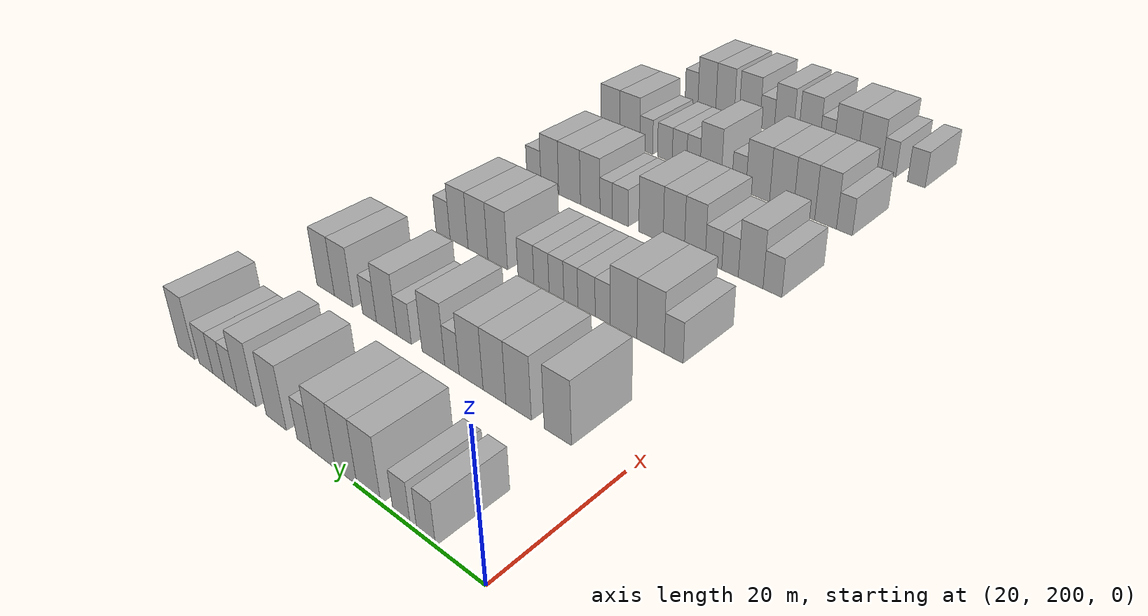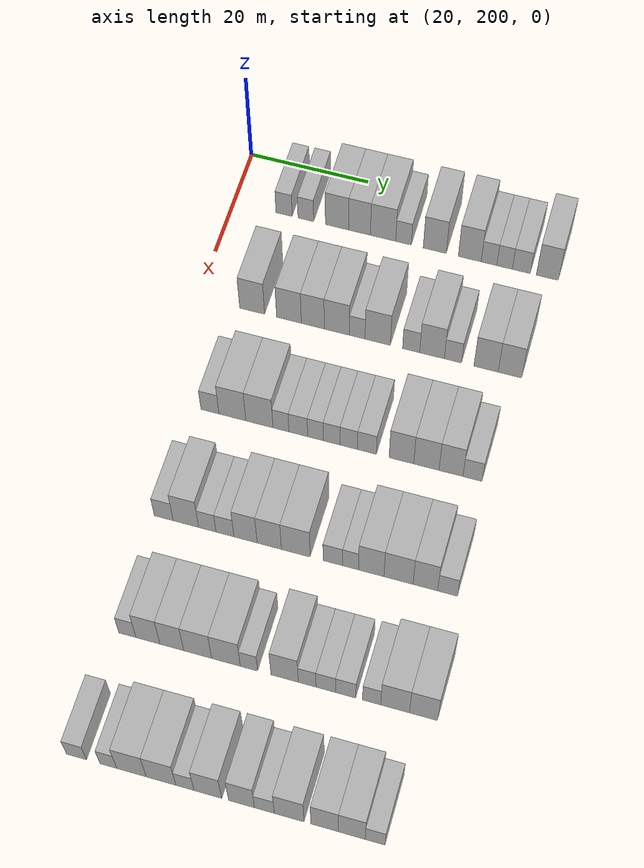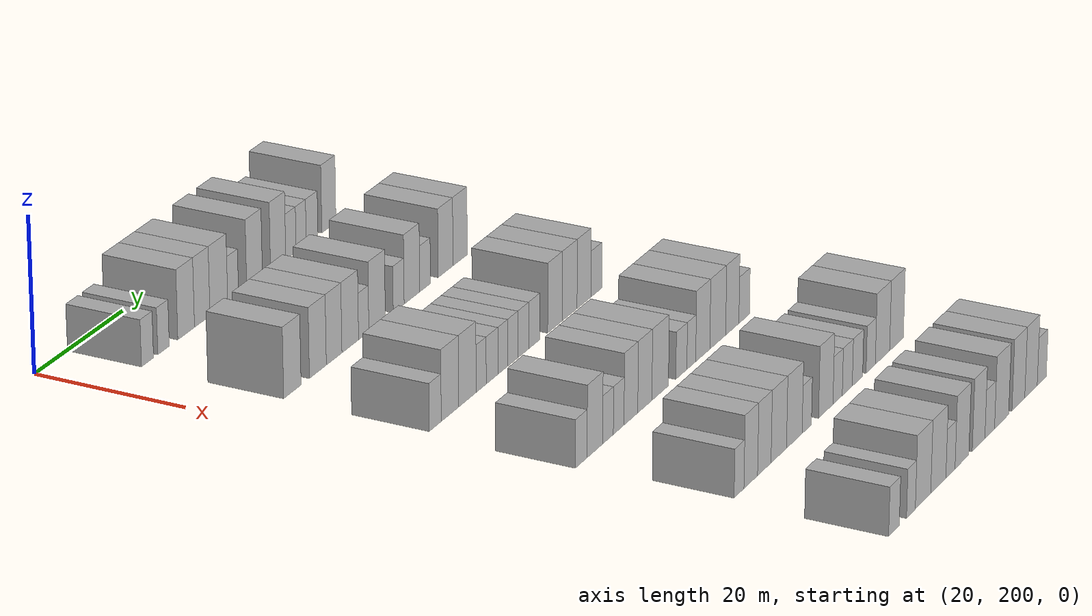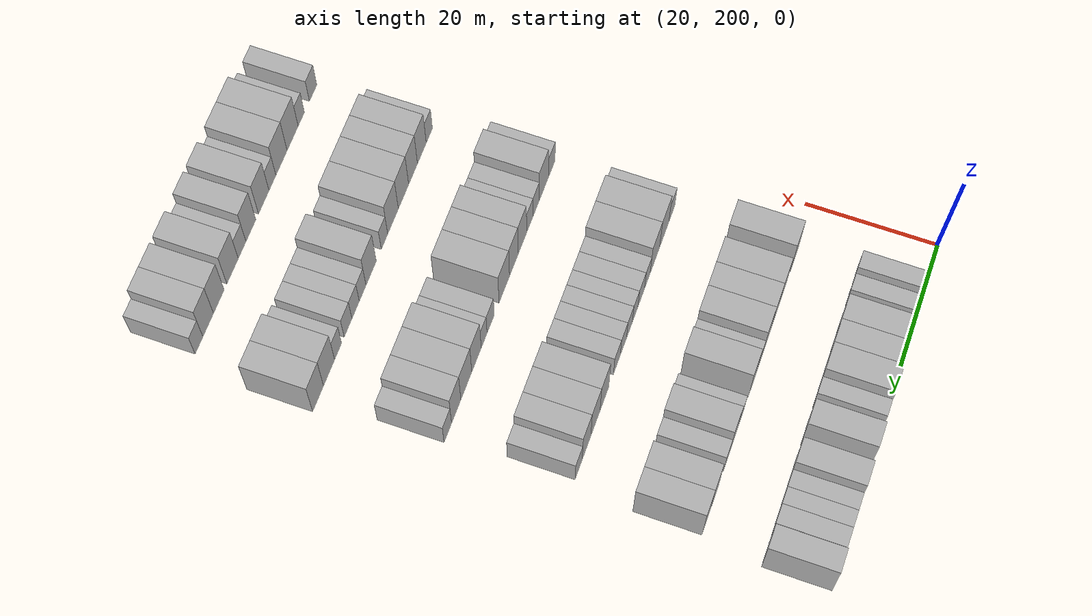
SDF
<sdf version="1.6">
 <world name="default">
  <model name="building_135">
   <static>1</static>
   <pose>25.0000 208.6250 0 0.000000 0.000000 0.000000</pose>
   <link name="link">
    <pose>0 0 3.00 0 0 0</pose>
    <collision name="collision"><geometry><box><size>10.0000 2.7635 6.0000</size></box></geometry></collision>
    <visual name="visual">
     <cast_shadows>0</cast_shadows>
     <geometry><box><size>10.0000 2.7635 6.0000</size></box></geometry>
     <material>
      <script>
       <uri>model://HANNAS_wall/materials/scripts</uri>
       <uri>model://HANNAS_wall/materials/textures</uri>
       <name>vrc/HANNAS_wall</name>
      </script>
     </material>
    </visual>
   </link>
  </model>
  <model name="building_136">
   <static>1</static>
   <pose>25.0000 212.3387 0 0.000000 0.000000 0.000000</pose>
   <link name="link">
    <pose>0 0 3.00 0 0 0</pose>
    <collision name="collision"><geometry><box><size>10.0000 2.6638 6.0000</size></box></geometry></collision>
    <visual name="visual">
     <cast_shadows>0</cast_shadows>
     <geometry><box><size>10.0000 2.6638 6.0000</size></box></geometry>
     <material>
      <script>
       <uri>model://HANNAS_wall/materials/scripts</uri>
       <uri>model://HANNAS_wall/materials/textures</uri>
       <name>vrc/HANNAS_wall</name>
      </script>
     </material>
    </visual>
   </link>
  </model>
  <model name="building_137">
   <static>1</static>
   <pose>25.0000 217.6332 0 0.000000 0.000000 0.000000</pose>
   <link name="link">
    <pose>0 0 4.50 0 0 0</pose>
    <collision name="collision"><geometry><box><size>10.0000 3.9252 9.0000</size></box></geometry></collision>
    <visual name="visual">
     <cast_shadows>0</cast_shadows>
     <geometry><box><size>10.0000 3.9252 9.0000</size></box></geometry>
     <material>
      <script>
       <uri>model://HANNAS_wall/materials/scripts</uri>
       <uri>model://HANNAS_wall/materials/textures</uri>
       <name>vrc/HANNAS_wall</name>
      </script>
     </material>
    </visual>
   </link>
  </model>
  <model name="building_138">
   <static>1</static>
   <pose>25.0000 221.4359 0 0.000000 0.000000 0.000000</pose>
   <link name="link">
    <pose>0 0 4.50 0 0 0</pose>
    <collision name="collision"><geometry><box><size>10.0000 3.6803 9.0000</size></box></geometry></collision>
    <visual name="visual">
     <cast_shadows>0</cast_shadows>
     <geometry><box><size>10.0000 3.6803 9.0000</size></box></geometry>
     <material>
      <script>
       <uri>model://HANNAS_wall/materials/scripts</uri>
       <uri>model://HANNAS_wall/materials/textures</uri>
       <name>vrc/HANNAS_wall</name>
      </script>
     </material>
    </visual>
   </link>
  </model>
  <model name="building_139">
   <static>1</static>
   <pose>25.0000 225.4067 0 0.000000 0.000000 0.000000</pose>
   <link name="link">
    <pose>0 0 4.50 0 0 0</pose>
    <collision name="collision"><geometry><box><size>10.0000 4.2613 9.0000</size></box></geometry></collision>
    <visual name="visual">
     <cast_shadows>0</cast_shadows>
     <geometry><box><size>10.0000 4.2613 9.0000</size></box></geometry>
     <material>
      <script>
       <uri>model://HANNAS_wall/materials/scripts</uri>
       <uri>model://HANNAS_wall/materials/textures</uri>
       <name>vrc/HANNAS_wall</name>
      </script>
     </material>
    </visual>
   </link>
  </model>
  <model name="building_140">
   <static>1</static>
   <pose>25.0000 228.8436 0 0.000000 0.000000 0.000000</pose>
   <link name="link">
    <pose>0 0 3.00 0 0 0</pose>
    <collision name="collision"><geometry><box><size>10.0000 2.6125 6.0000</size></box></geometry></collision>
    <visual name="visual">
     <cast_shadows>0</cast_shadows>
     <geometry><box><size>10.0000 2.6125 6.0000</size></box></geometry>
     <material>
      <script>
       <uri>model://HANNAS_wall/materials/scripts</uri>
       <uri>model://HANNAS_wall/materials/textures</uri>
       <name>vrc/HANNAS_wall</name>
      </script>
     </material>
    </visual>
   </link>
  </model>
  <model name="building_141">
   <static>1</static>
   <pose>25.0000 234.0780 0 0.000000 0.000000 0.000000</pose>
   <link name="link">
    <pose>0 0 4.50 0 0 0</pose>
    <collision name="collision"><geometry><box><size>10.0000 3.8562 9.0000</size></box></geometry></collision>
    <visual name="visual">
     <cast_shadows>0</cast_shadows>
     <geometry><box><size>10.0000 3.8562 9.0000</size></box></geometry>
     <material>
      <script>
       <uri>model://HANNAS_wall/materials/scripts</uri>
       <uri>model://HANNAS_wall/materials/textures</uri>
       <name>vrc/HANNAS_wall</name>
      </script>
     </material>
    </visual>
   </link>
  </model>
  <model name="building_142">
   <static>1</static>
   <pose>25.0000 239.9063 0 0.000000 0.000000 0.000000</pose>
   <link name="link">
    <pose>0 0 4.50 0 0 0</pose>
    <collision name="collision"><geometry><box><size>10.0000 3.8004 9.0000</size></box></geometry></collision>
    <visual name="visual">
     <cast_shadows>0</cast_shadows>
     <geometry><box><size>10.0000 3.8004 9.0000</size></box></geometry>
     <material>
      <script>
       <uri>model://HANNAS_wall/materials/scripts</uri>
       <uri>model://HANNAS_wall/materials/textures</uri>
       <name>vrc/HANNAS_wall</name>
      </script>
     </material>
    </visual>
   </link>
  </model>
  <model name="building_143">
   <static>1</static>
   <pose>25.0000 243.1037 0 0.000000 0.000000 0.000000</pose>
   <link name="link">
    <pose>0 0 3.00 0 0 0</pose>
    <collision name="collision"><geometry><box><size>10.0000 2.5945 6.0000</size></box></geometry></collision>
    <visual name="visual">
     <cast_shadows>0</cast_shadows>
     <geometry><box><size>10.0000 2.5945 6.0000</size></box></geometry>
     <material>
      <script>
       <uri>model://HANNAS_wall/materials/scripts</uri>
       <uri>model://HANNAS_wall/materials/textures</uri>
       <name>vrc/HANNAS_wall</name>
      </script>
     </material>
    </visual>
   </link>
  </model>
  <model name="building_144">
   <static>1</static>
   <pose>25.0000 245.6774 0 0.000000 0.000000 0.000000</pose>
   <link name="link">
    <pose>0 0 3.00 0 0 0</pose>
    <collision name="collision"><geometry><box><size>10.0000 2.5530 6.0000</size></box></geometry></collision>
    <visual name="visual">
     <cast_shadows>0</cast_shadows>
     <geometry><box><size>10.0000 2.5530 6.0000</size></box></geometry>
     <material>
      <script>
       <uri>model://HANNAS_wall/materials/scripts</uri>
       <uri>model://HANNAS_wall/materials/textures</uri>
       <name>vrc/HANNAS_wall</name>
      </script>
     </material>
    </visual>
   </link>
  </model>
  <model name="building_145">
   <static>1</static>
   <pose>25.0000 248.4351 0 0.000000 0.000000 0.000000</pose>
   <link name="link">
    <pose>0 0 3.00 0 0 0</pose>
    <collision name="collision"><geometry><box><size>10.0000 2.9623 6.0000</size></box></geometry></collision>
    <visual name="visual">
     <cast_shadows>0</cast_shadows>
     <geometry><box><size>10.0000 2.9623 6.0000</size></box></geometry>
     <material>
      <script>
       <uri>model://HANNAS_wall/materials/scripts</uri>
       <uri>model://HANNAS_wall/materials/textures</uri>
       <name>vrc/HANNAS_wall</name>
      </script>
     </material>
    </visual>
   </link>
  </model>
  <model name="building_146">
   <static>1</static>
   <pose>25.0000 252.7270 0 0.000000 0.000000 0.000000</pose>
   <link name="link">
    <pose>0 0 4.50 0 0 0</pose>
    <collision name="collision"><geometry><box><size>10.0000 3.6214 9.0000</size></box></geometry></collision>
    <visual name="visual">
     <cast_shadows>0</cast_shadows>
     <geometry><box><size>10.0000 3.6214 9.0000</size></box></geometry>
     <material>
      <script>
       <uri>model://HANNAS_wall/materials/scripts</uri>
       <uri>model://HANNAS_wall/materials/textures</uri>
       <name>vrc/HANNAS_wall</name>
      </script>
     </material>
    </visual>
   </link>
  </model>
  <model name="building_309">
   <static>1</static>
   <pose>44.0000 209.0740 0 0.000000 0.000000 0.000000</pose>
   <link name="link">
    <pose>0 0 4.50 0 0 0</pose>
    <collision name="collision"><geometry><box><size>10.0000 4.1253 9.0000</size></box></geometry></collision>
    <visual name="visual">
     <cast_shadows>0</cast_shadows>
     <geometry><box><size>10.0000 4.1253 9.0000</size></box></geometry>
     <material>
      <script>
       <uri>model://HANNAS_wall/materials/scripts</uri>
       <uri>model://HANNAS_wall/materials/textures</uri>
       <name>vrc/HANNAS_wall</name>
      </script>
     </material>
    </visual>
   </link>
  </model>
  <model name="building_310">
   <static>1</static>
   <pose>44.0000 215.1765 0 0.000000 0.000000 0.000000</pose>
   <link name="link">
    <pose>0 0 4.50 0 0 0</pose>
    <collision name="collision"><geometry><box><size>10.0000 4.0797 9.0000</size></box></geometry></collision>
    <visual name="visual">
     <cast_shadows>0</cast_shadows>
     <geometry><box><size>10.0000 4.0797 9.0000</size></box></geometry>
     <material>
      <script>
       <uri>model://HANNAS_wall/materials/scripts</uri>
       <uri>model://HANNAS_wall/materials/textures</uri>
       <name>vrc/HANNAS_wall</name>
      </script>
     </material>
    </visual>
   </link>
  </model>
  <model name="building_311">
   <static>1</static>
   <pose>44.0000 219.1152 0 0.000000 0.000000 0.000000</pose>
   <link name="link">
    <pose>0 0 4.50 0 0 0</pose>
    <collision name="collision"><geometry><box><size>10.0000 3.7977 9.0000</size></box></geometry></collision>
    <visual name="visual">
     <cast_shadows>0</cast_shadows>
     <geometry><box><size>10.0000 3.7977 9.0000</size></box></geometry>
     <material>
      <script>
       <uri>model://HANNAS_wall/materials/scripts</uri>
       <uri>model://HANNAS_wall/materials/textures</uri>
       <name>vrc/HANNAS_wall</name>
      </script>
     </material>
    </visual>
   </link>
  </model>
  <model name="building_312">
   <static>1</static>
   <pose>44.0000 223.0641 0 0.000000 0.000000 0.000000</pose>
   <link name="link">
    <pose>0 0 4.50 0 0 0</pose>
    <collision name="collision"><geometry><box><size>10.0000 4.1003 9.0000</size></box></geometry></collision>
    <visual name="visual">
     <cast_shadows>0</cast_shadows>
     <geometry><box><size>10.0000 4.1003 9.0000</size></box></geometry>
     <material>
      <script>
       <uri>model://HANNAS_wall/materials/scripts</uri>
       <uri>model://HANNAS_wall/materials/textures</uri>
       <name>vrc/HANNAS_wall</name>
      </script>
     </material>
    </visual>
   </link>
  </model>
  <model name="building_313">
   <static>1</static>
   <pose>44.0000 226.3930 0 0.000000 0.000000 0.000000</pose>
   <link name="link">
    <pose>0 0 3.00 0 0 0</pose>
    <collision name="collision"><geometry><box><size>10.0000 2.5575 6.0000</size></box></geometry></collision>
    <visual name="visual">
     <cast_shadows>0</cast_shadows>
     <geometry><box><size>10.0000 2.5575 6.0000</size></box></geometry>
     <material>
      <script>
       <uri>model://HANNAS_wall/materials/scripts</uri>
       <uri>model://HANNAS_wall/materials/textures</uri>
       <name>vrc/HANNAS_wall</name>
      </script>
     </material>
    </visual>
   </link>
  </model>
  <model name="building_314">
   <static>1</static>
   <pose>44.0000 229.7344 0 0.000000 0.000000 0.000000</pose>
   <link name="link">
    <pose>0 0 4.50 0 0 0</pose>
    <collision name="collision"><geometry><box><size>10.0000 4.1252 9.0000</size></box></geometry></collision>
    <visual name="visual">
     <cast_shadows>0</cast_shadows>
     <geometry><box><size>10.0000 4.1252 9.0000</size></box></geometry>
     <material>
      <script>
       <uri>model://HANNAS_wall/materials/scripts</uri>
       <uri>model://HANNAS_wall/materials/textures</uri>
       <name>vrc/HANNAS_wall</name>
      </script>
     </material>
    </visual>
   </link>
  </model>
  <model name="building_315">
   <static>1</static>
   <pose>44.0000 235.1810 0 0.000000 0.000000 0.000000</pose>
   <link name="link">
    <pose>0 0 3.00 0 0 0</pose>
    <collision name="collision"><geometry><box><size>10.0000 2.7679 6.0000</size></box></geometry></collision>
    <visual name="visual">
     <cast_shadows>0</cast_shadows>
     <geometry><box><size>10.0000 2.7679 6.0000</size></box></geometry>
     <material>
      <script>
       <uri>model://HANNAS_wall/materials/scripts</uri>
       <uri>model://HANNAS_wall/materials/textures</uri>
       <name>vrc/HANNAS_wall</name>
      </script>
     </material>
    </visual>
   </link>
  </model>
  <model name="building_316">
   <static>1</static>
   <pose>44.0000 238.5628 0 0.000000 0.000000 0.000000</pose>
   <link name="link">
    <pose>0 0 4.50 0 0 0</pose>
    <collision name="collision"><geometry><box><size>10.0000 3.9957 9.0000</size></box></geometry></collision>
    <visual name="visual">
     <cast_shadows>0</cast_shadows>
     <geometry><box><size>10.0000 3.9957 9.0000</size></box></geometry>
     <material>
      <script>
       <uri>model://HANNAS_wall/materials/scripts</uri>
       <uri>model://HANNAS_wall/materials/textures</uri>
       <name>vrc/HANNAS_wall</name>
      </script>
     </material>
    </visual>
   </link>
  </model>
  <model name="building_317">
   <static>1</static>
   <pose>44.0000 241.9426 0 0.000000 0.000000 0.000000</pose>
   <link name="link">
    <pose>0 0 3.00 0 0 0</pose>
    <collision name="collision"><geometry><box><size>10.0000 2.7638 6.0000</size></box></geometry></collision>
    <visual name="visual">
     <cast_shadows>0</cast_shadows>
     <geometry><box><size>10.0000 2.7638 6.0000</size></box></geometry>
     <material>
      <script>
       <uri>model://HANNAS_wall/materials/scripts</uri>
       <uri>model://HANNAS_wall/materials/textures</uri>
       <name>vrc/HANNAS_wall</name>
      </script>
     </material>
    </visual>
   </link>
  </model>
  <model name="building_318">
   <static>1</static>
   <pose>44.0000 247.2689 0 0.000000 0.000000 0.000000</pose>
   <link name="link">
    <pose>0 0 4.50 0 0 0</pose>
    <collision name="collision"><geometry><box><size>10.0000 3.8887 9.0000</size></box></geometry></collision>
    <visual name="visual">
     <cast_shadows>0</cast_shadows>
     <geometry><box><size>10.0000 3.8887 9.0000</size></box></geometry>
     <material>
      <script>
       <uri>model://HANNAS_wall/materials/scripts</uri>
       <uri>model://HANNAS_wall/materials/textures</uri>
       <name>vrc/HANNAS_wall</name>
      </script>
     </material>
    </visual>
   </link>
  </model>
  <model name="building_319">
   <static>1</static>
   <pose>44.0000 251.0948 0 0.000000 0.000000 0.000000</pose>
   <link name="link">
    <pose>0 0 4.50 0 0 0</pose>
    <collision name="collision"><geometry><box><size>10.0000 3.7631 9.0000</size></box></geometry></collision>
    <visual name="visual">
     <cast_shadows>0</cast_shadows>
     <geometry><box><size>10.0000 3.7631 9.0000</size></box></geometry>
     <material>
      <script>
       <uri>model://HANNAS_wall/materials/scripts</uri>
       <uri>model://HANNAS_wall/materials/textures</uri>
       <name>vrc/HANNAS_wall</name>
      </script>
     </material>
    </visual>
   </link>
  </model>
  <model name="building_470">
   <static>1</static>
   <pose>63.0000 208.1879 0 0.000000 0.000000 0.000000</pose>
   <link name="link">
    <pose>0 0 3.00 0 0 0</pose>
    <collision name="collision"><geometry><box><size>10.0000 2.9054 6.0000</size></box></geometry></collision>
    <visual name="visual">
     <cast_shadows>0</cast_shadows>
     <geometry><box><size>10.0000 2.9054 6.0000</size></box></geometry>
     <material>
      <script>
       <uri>model://HANNAS_wall/materials/scripts</uri>
       <uri>model://HANNAS_wall/materials/textures</uri>
       <name>vrc/HANNAS_wall</name>
      </script>
     </material>
    </visual>
   </link>
  </model>
  <model name="building_471">
   <static>1</static>
   <pose>63.0000 211.8039 0 0.000000 0.000000 0.000000</pose>
   <link name="link">
    <pose>0 0 4.50 0 0 0</pose>
    <collision name="collision"><geometry><box><size>10.0000 4.3266 9.0000</size></box></geometry></collision>
    <visual name="visual">
     <cast_shadows>0</cast_shadows>
     <geometry><box><size>10.0000 4.3266 9.0000</size></box></geometry>
     <material>
      <script>
       <uri>model://HANNAS_wall/materials/scripts</uri>
       <uri>model://HANNAS_wall/materials/textures</uri>
       <name>vrc/HANNAS_wall</name>
      </script>
     </material>
    </visual>
   </link>
  </model>
  <model name="building_472">
   <static>1</static>
   <pose>63.0000 216.1492 0 0.000000 0.000000 0.000000</pose>
   <link name="link">
    <pose>0 0 4.50 0 0 0</pose>
    <collision name="collision"><geometry><box><size>10.0000 4.3640 9.0000</size></box></geometry></collision>
    <visual name="visual">
     <cast_shadows>0</cast_shadows>
     <geometry><box><size>10.0000 4.3640 9.0000</size></box></geometry>
     <material>
      <script>
       <uri>model://HANNAS_wall/materials/scripts</uri>
       <uri>model://HANNAS_wall/materials/textures</uri>
       <name>vrc/HANNAS_wall</name>
      </script>
     </material>
    </visual>
   </link>
  </model>
  <model name="building_473">
   <static>1</static>
   <pose>63.0000 219.6053 0 0.000000 0.000000 0.000000</pose>
   <link name="link">
    <pose>0 0 3.00 0 0 0</pose>
    <collision name="collision"><geometry><box><size>10.0000 2.5482 6.0000</size></box></geometry></collision>
    <visual name="visual">
     <cast_shadows>0</cast_shadows>
     <geometry><box><size>10.0000 2.5482 6.0000</size></box></geometry>
     <material>
      <script>
       <uri>model://HANNAS_wall/materials/scripts</uri>
       <uri>model://HANNAS_wall/materials/textures</uri>
       <name>vrc/HANNAS_wall</name>
      </script>
     </material>
    </visual>
   </link>
  </model>
  <model name="building_474">
   <static>1</static>
   <pose>63.0000 222.3737 0 0.000000 0.000000 0.000000</pose>
   <link name="link">
    <pose>0 0 3.00 0 0 0</pose>
    <collision name="collision"><geometry><box><size>10.0000 2.9887 6.0000</size></box></geometry></collision>
    <visual name="visual">
     <cast_shadows>0</cast_shadows>
     <geometry><box><size>10.0000 2.9887 6.0000</size></box></geometry>
     <material>
      <script>
       <uri>model://HANNAS_wall/materials/scripts</uri>
       <uri>model://HANNAS_wall/materials/textures</uri>
       <name>vrc/HANNAS_wall</name>
      </script>
     </material>
    </visual>
   </link>
  </model>
  <model name="building_475">
   <static>1</static>
   <pose>63.0000 225.1084 0 0.000000 0.000000 0.000000</pose>
   <link name="link">
    <pose>0 0 3.00 0 0 0</pose>
    <collision name="collision"><geometry><box><size>10.0000 2.4806 6.0000</size></box></geometry></collision>
    <visual name="visual">
     <cast_shadows>0</cast_shadows>
     <geometry><box><size>10.0000 2.4806 6.0000</size></box></geometry>
     <material>
      <script>
       <uri>model://HANNAS_wall/materials/scripts</uri>
       <uri>model://HANNAS_wall/materials/textures</uri>
       <name>vrc/HANNAS_wall</name>
      </script>
     </material>
    </visual>
   </link>
  </model>
  <model name="building_476">
   <static>1</static>
   <pose>63.0000 227.6725 0 0.000000 0.000000 0.000000</pose>
   <link name="link">
    <pose>0 0 3.00 0 0 0</pose>
    <collision name="collision"><geometry><box><size>10.0000 2.6477 6.0000</size></box></geometry></collision>
    <visual name="visual">
     <cast_shadows>0</cast_shadows>
     <geometry><box><size>10.0000 2.6477 6.0000</size></box></geometry>
     <material>
      <script>
       <uri>model://HANNAS_wall/materials/scripts</uri>
       <uri>model://HANNAS_wall/materials/textures</uri>
       <name>vrc/HANNAS_wall</name>
      </script>
     </material>
    </visual>
   </link>
  </model>
  <model name="building_477">
   <static>1</static>
   <pose>63.0000 230.3865 0 0.000000 0.000000 0.000000</pose>
   <link name="link">
    <pose>0 0 3.00 0 0 0</pose>
    <collision name="collision"><geometry><box><size>10.0000 2.7804 6.0000</size></box></geometry></collision>
    <visual name="visual">
     <cast_shadows>0</cast_shadows>
     <geometry><box><size>10.0000 2.7804 6.0000</size></box></geometry>
     <material>
      <script>
       <uri>model://HANNAS_wall/materials/scripts</uri>
       <uri>model://HANNAS_wall/materials/textures</uri>
       <name>vrc/HANNAS_wall</name>
      </script>
     </material>
    </visual>
   </link>
  </model>
  <model name="building_478">
   <static>1</static>
   <pose>63.0000 233.2746 0 0.000000 0.000000 0.000000</pose>
   <link name="link">
    <pose>0 0 3.00 0 0 0</pose>
    <collision name="collision"><geometry><box><size>10.0000 2.9958 6.0000</size></box></geometry></collision>
    <visual name="visual">
     <cast_shadows>0</cast_shadows>
     <geometry><box><size>10.0000 2.9958 6.0000</size></box></geometry>
     <material>
      <script>
       <uri>model://HANNAS_wall/materials/scripts</uri>
       <uri>model://HANNAS_wall/materials/textures</uri>
       <name>vrc/HANNAS_wall</name>
      </script>
     </material>
    </visual>
   </link>
  </model>
  <model name="building_479">
   <static>1</static>
   <pose>63.0000 238.7029 0 0.000000 0.000000 0.000000</pose>
   <link name="link">
    <pose>0 0 4.50 0 0 0</pose>
    <collision name="collision"><geometry><box><size>10.0000 3.8607 9.0000</size></box></geometry></collision>
    <visual name="visual">
     <cast_shadows>0</cast_shadows>
     <geometry><box><size>10.0000 3.8607 9.0000</size></box></geometry>
     <material>
      <script>
       <uri>model://HANNAS_wall/materials/scripts</uri>
       <uri>model://HANNAS_wall/materials/textures</uri>
       <name>vrc/HANNAS_wall</name>
      </script>
     </material>
    </visual>
   </link>
  </model>
  <model name="building_480">
   <static>1</static>
   <pose>63.0000 242.6169 0 0.000000 0.000000 0.000000</pose>
   <link name="link">
    <pose>0 0 4.50 0 0 0</pose>
    <collision name="collision"><geometry><box><size>10.0000 3.9675 9.0000</size></box></geometry></collision>
    <visual name="visual">
     <cast_shadows>0</cast_shadows>
     <geometry><box><size>10.0000 3.9675 9.0000</size></box></geometry>
     <material>
      <script>
       <uri>model://HANNAS_wall/materials/scripts</uri>
       <uri>model://HANNAS_wall/materials/textures</uri>
       <name>vrc/HANNAS_wall</name>
      </script>
     </material>
    </visual>
   </link>
  </model>
  <model name="building_481">
   <static>1</static>
   <pose>63.0000 246.4679 0 0.000000 0.000000 0.000000</pose>
   <link name="link">
    <pose>0 0 4.50 0 0 0</pose>
    <collision name="collision"><geometry><box><size>10.0000 3.7345 9.0000</size></box></geometry></collision>
    <visual name="visual">
     <cast_shadows>0</cast_shadows>
     <geometry><box><size>10.0000 3.7345 9.0000</size></box></geometry>
     <material>
      <script>
       <uri>model://HANNAS_wall/materials/scripts</uri>
       <uri>model://HANNAS_wall/materials/textures</uri>
       <name>vrc/HANNAS_wall</name>
      </script>
     </material>
    </visual>
   </link>
  </model>
  <model name="building_482">
   <static>1</static>
   <pose>63.0000 249.8191 0 0.000000 0.000000 0.000000</pose>
   <link name="link">
    <pose>0 0 3.00 0 0 0</pose>
    <collision name="collision"><geometry><box><size>10.0000 2.9678 6.0000</size></box></geometry></collision>
    <visual name="visual">
     <cast_shadows>0</cast_shadows>
     <geometry><box><size>10.0000 2.9678 6.0000</size></box></geometry>
     <material>
      <script>
       <uri>model://HANNAS_wall/materials/scripts</uri>
       <uri>model://HANNAS_wall/materials/textures</uri>
       <name>vrc/HANNAS_wall</name>
      </script>
     </material>
    </visual>
   </link>
  </model>
  <model name="building_639">
   <static>1</static>
   <pose>82.0000 207.0833 0 0.000000 0.000000 0.000000</pose>
   <link name="link">
    <pose>0 0 3.00 0 0 0</pose>
    <collision name="collision"><geometry><box><size>10.0000 2.9634 6.0000</size></box></geometry></collision>
    <visual name="visual">
     <cast_shadows>0</cast_shadows>
     <geometry><box><size>10.0000 2.9634 6.0000</size></box></geometry>
     <material>
      <script>
       <uri>model://HANNAS_wall/materials/scripts</uri>
       <uri>model://HANNAS_wall/materials/textures</uri>
       <name>vrc/HANNAS_wall</name>
      </script>
     </material>
    </visual>
   </link>
  </model>
  <model name="building_640">
   <static>1</static>
   <pose>82.0000 210.5590 0 0.000000 0.000000 0.000000</pose>
   <link name="link">
    <pose>0 0 4.50 0 0 0</pose>
    <collision name="collision"><geometry><box><size>10.0000 3.9879 9.0000</size></box></geometry></collision>
    <visual name="visual">
     <cast_shadows>0</cast_shadows>
     <geometry><box><size>10.0000 3.9879 9.0000</size></box></geometry>
     <material>
      <script>
       <uri>model://HANNAS_wall/materials/scripts</uri>
       <uri>model://HANNAS_wall/materials/textures</uri>
       <name>vrc/HANNAS_wall</name>
      </script>
     </material>
    </visual>
   </link>
  </model>
  <model name="building_641">
   <static>1</static>
   <pose>82.0000 213.9183 0 0.000000 0.000000 0.000000</pose>
   <link name="link">
    <pose>0 0 3.00 0 0 0</pose>
    <collision name="collision"><geometry><box><size>10.0000 2.7309 6.0000</size></box></geometry></collision>
    <visual name="visual">
     <cast_shadows>0</cast_shadows>
     <geometry><box><size>10.0000 2.7309 6.0000</size></box></geometry>
     <material>
      <script>
       <uri>model://HANNAS_wall/materials/scripts</uri>
       <uri>model://HANNAS_wall/materials/textures</uri>
       <name>vrc/HANNAS_wall</name>
      </script>
     </material>
    </visual>
   </link>
  </model>
  <model name="building_642">
   <static>1</static>
   <pose>82.0000 216.6813 0 0.000000 0.000000 0.000000</pose>
   <link name="link">
    <pose>0 0 3.00 0 0 0</pose>
    <collision name="collision"><geometry><box><size>10.0000 2.7949 6.0000</size></box></geometry></collision>
    <visual name="visual">
     <cast_shadows>0</cast_shadows>
     <geometry><box><size>10.0000 2.7949 6.0000</size></box></geometry>
     <material>
      <script>
       <uri>model://HANNAS_wall/materials/scripts</uri>
       <uri>model://HANNAS_wall/materials/textures</uri>
       <name>vrc/HANNAS_wall</name>
      </script>
     </material>
    </visual>
   </link>
  </model>
  <model name="building_643">
   <static>1</static>
   <pose>82.0000 219.8819 0 0.000000 0.000000 0.000000</pose>
   <link name="link">
    <pose>0 0 4.50 0 0 0</pose>
    <collision name="collision"><geometry><box><size>10.0000 3.6064 9.0000</size></box></geometry></collision>
    <visual name="visual">
     <cast_shadows>0</cast_shadows>
     <geometry><box><size>10.0000 3.6064 9.0000</size></box></geometry>
     <material>
      <script>
       <uri>model://HANNAS_wall/materials/scripts</uri>
       <uri>model://HANNAS_wall/materials/textures</uri>
       <name>vrc/HANNAS_wall</name>
      </script>
     </material>
    </visual>
   </link>
  </model>
  <model name="building_644">
   <static>1</static>
   <pose>82.0000 223.5634 0 0.000000 0.000000 0.000000</pose>
   <link name="link">
    <pose>0 0 4.50 0 0 0</pose>
    <collision name="collision"><geometry><box><size>10.0000 3.7566 9.0000</size></box></geometry></collision>
    <visual name="visual">
     <cast_shadows>0</cast_shadows>
     <geometry><box><size>10.0000 3.7566 9.0000</size></box></geometry>
     <material>
      <script>
       <uri>model://HANNAS_wall/materials/scripts</uri>
       <uri>model://HANNAS_wall/materials/textures</uri>
       <name>vrc/HANNAS_wall</name>
      </script>
     </material>
    </visual>
   </link>
  </model>
  <model name="building_645">
   <static>1</static>
   <pose>82.0000 227.6547 0 0.000000 0.000000 0.000000</pose>
   <link name="link">
    <pose>0 0 4.50 0 0 0</pose>
    <collision name="collision"><geometry><box><size>10.0000 4.4260 9.0000</size></box></geometry></collision>
    <visual name="visual">
     <cast_shadows>0</cast_shadows>
     <geometry><box><size>10.0000 4.4260 9.0000</size></box></geometry>
     <material>
      <script>
       <uri>model://HANNAS_wall/materials/scripts</uri>
       <uri>model://HANNAS_wall/materials/textures</uri>
       <name>vrc/HANNAS_wall</name>
      </script>
     </material>
    </visual>
   </link>
  </model>
  <model name="building_646">
   <static>1</static>
   <pose>82.0000 233.3625 0 0.000000 0.000000 0.000000</pose>
   <link name="link">
    <pose>0 0 3.00 0 0 0</pose>
    <collision name="collision"><geometry><box><size>10.0000 2.9897 6.0000</size></box></geometry></collision>
    <visual name="visual">
     <cast_shadows>0</cast_shadows>
     <geometry><box><size>10.0000 2.9897 6.0000</size></box></geometry>
     <material>
      <script>
       <uri>model://HANNAS_wall/materials/scripts</uri>
       <uri>model://HANNAS_wall/materials/textures</uri>
       <name>vrc/HANNAS_wall</name>
      </script>
     </material>
    </visual>
   </link>
  </model>
  <model name="building_647">
   <static>1</static>
   <pose>82.0000 236.0669 0 0.000000 0.000000 0.000000</pose>
   <link name="link">
    <pose>0 0 3.00 0 0 0</pose>
    <collision name="collision"><geometry><box><size>10.0000 2.4189 6.0000</size></box></geometry></collision>
    <visual name="visual">
     <cast_shadows>0</cast_shadows>
     <geometry><box><size>10.0000 2.4189 6.0000</size></box></geometry>
     <material>
      <script>
       <uri>model://HANNAS_wall/materials/scripts</uri>
       <uri>model://HANNAS_wall/materials/textures</uri>
       <name>vrc/HANNAS_wall</name>
      </script>
     </material>
    </visual>
   </link>
  </model>
  <model name="building_648">
   <static>1</static>
   <pose>82.0000 239.2182 0 0.000000 0.000000 0.000000</pose>
   <link name="link">
    <pose>0 0 4.50 0 0 0</pose>
    <collision name="collision"><geometry><box><size>10.0000 3.8837 9.0000</size></box></geometry></collision>
    <visual name="visual">
     <cast_shadows>0</cast_shadows>
     <geometry><box><size>10.0000 3.8837 9.0000</size></box></geometry>
     <material>
      <script>
       <uri>model://HANNAS_wall/materials/scripts</uri>
       <uri>model://HANNAS_wall/materials/textures</uri>
       <name>vrc/HANNAS_wall</name>
      </script>
     </material>
    </visual>
   </link>
  </model>
  <model name="building_649">
   <static>1</static>
   <pose>82.0000 243.3698 0 0.000000 0.000000 0.000000</pose>
   <link name="link">
    <pose>0 0 4.50 0 0 0</pose>
    <collision name="collision"><geometry><box><size>10.0000 4.4194 9.0000</size></box></geometry></collision>
    <visual name="visual">
     <cast_shadows>0</cast_shadows>
     <geometry><box><size>10.0000 4.4194 9.0000</size></box></geometry>
     <material>
      <script>
       <uri>model://HANNAS_wall/materials/scripts</uri>
       <uri>model://HANNAS_wall/materials/textures</uri>
       <name>vrc/HANNAS_wall</name>
      </script>
     </material>
    </visual>
   </link>
  </model>
  <model name="building_650">
   <static>1</static>
   <pose>82.0000 247.4385 0 0.000000 0.000000 0.000000</pose>
   <link name="link">
    <pose>0 0 4.50 0 0 0</pose>
    <collision name="collision"><geometry><box><size>10.0000 3.7180 9.0000</size></box></geometry></collision>
    <visual name="visual">
     <cast_shadows>0</cast_shadows>
     <geometry><box><size>10.0000 3.7180 9.0000</size></box></geometry>
     <material>
      <script>
       <uri>model://HANNAS_wall/materials/scripts</uri>
       <uri>model://HANNAS_wall/materials/textures</uri>
       <name>vrc/HANNAS_wall</name>
      </script>
     </material>
    </visual>
   </link>
  </model>
  <model name="building_651">
   <static>1</static>
   <pose>82.0000 250.7966 0 0.000000 0.000000 0.000000</pose>
   <link name="link">
    <pose>0 0 3.00 0 0 0</pose>
    <collision name="collision"><geometry><box><size>10.0000 2.9983 6.0000</size></box></geometry></collision>
    <visual name="visual">
     <cast_shadows>0</cast_shadows>
     <geometry><box><size>10.0000 2.9983 6.0000</size></box></geometry>
     <material>
      <script>
       <uri>model://HANNAS_wall/materials/scripts</uri>
       <uri>model://HANNAS_wall/materials/textures</uri>
       <name>vrc/HANNAS_wall</name>
      </script>
     </material>
    </visual>
   </link>
  </model>
  <model name="building_817">
   <static>1</static>
   <pose>101.0000 207.9642 0 0.000000 0.000000 0.000000</pose>
   <link name="link">
    <pose>0 0 3.00 0 0 0</pose>
    <collision name="collision"><geometry><box><size>10.0000 2.5972 6.0000</size></box></geometry></collision>
    <visual name="visual">
     <cast_shadows>0</cast_shadows>
     <geometry><box><size>10.0000 2.5972 6.0000</size></box></geometry>
     <material>
      <script>
       <uri>model://HANNAS_wall/materials/scripts</uri>
       <uri>model://HANNAS_wall/materials/textures</uri>
       <name>vrc/HANNAS_wall</name>
      </script>
     </material>
    </visual>
   </link>
  </model>
  <model name="building_818">
   <static>1</static>
   <pose>101.0000 211.0825 0 0.000000 0.000000 0.000000</pose>
   <link name="link">
    <pose>0 0 4.50 0 0 0</pose>
    <collision name="collision"><geometry><box><size>10.0000 3.6395 9.0000</size></box></geometry></collision>
    <visual name="visual">
     <cast_shadows>0</cast_shadows>
     <geometry><box><size>10.0000 3.6395 9.0000</size></box></geometry>
     <material>
      <script>
       <uri>model://HANNAS_wall/materials/scripts</uri>
       <uri>model://HANNAS_wall/materials/textures</uri>
       <name>vrc/HANNAS_wall</name>
      </script>
     </material>
    </visual>
   </link>
  </model>
  <model name="building_819">
   <static>1</static>
   <pose>101.0000 214.7179 0 0.000000 0.000000 0.000000</pose>
   <link name="link">
    <pose>0 0 4.50 0 0 0</pose>
    <collision name="collision"><geometry><box><size>10.0000 3.6312 9.0000</size></box></geometry></collision>
    <visual name="visual">
     <cast_shadows>0</cast_shadows>
     <geometry><box><size>10.0000 3.6312 9.0000</size></box></geometry>
     <material>
      <script>
       <uri>model://HANNAS_wall/materials/scripts</uri>
       <uri>model://HANNAS_wall/materials/textures</uri>
       <name>vrc/HANNAS_wall</name>
      </script>
     </material>
    </visual>
   </link>
  </model>
  <model name="building_820">
   <static>1</static>
   <pose>101.0000 218.6407 0 0.000000 0.000000 0.000000</pose>
   <link name="link">
    <pose>0 0 4.50 0 0 0</pose>
    <collision name="collision"><geometry><box><size>10.0000 4.2144 9.0000</size></box></geometry></collision>
    <visual name="visual">
     <cast_shadows>0</cast_shadows>
     <geometry><box><size>10.0000 4.2144 9.0000</size></box></geometry>
     <material>
      <script>
       <uri>model://HANNAS_wall/materials/scripts</uri>
       <uri>model://HANNAS_wall/materials/textures</uri>
       <name>vrc/HANNAS_wall</name>
      </script>
     </material>
    </visual>
   </link>
  </model>
  <model name="building_821">
   <static>1</static>
   <pose>101.0000 222.9029 0 0.000000 0.000000 0.000000</pose>
   <link name="link">
    <pose>0 0 4.50 0 0 0</pose>
    <collision name="collision"><geometry><box><size>10.0000 4.3102 9.0000</size></box></geometry></collision>
    <visual name="visual">
     <cast_shadows>0</cast_shadows>
     <geometry><box><size>10.0000 4.3102 9.0000</size></box></geometry>
     <material>
      <script>
       <uri>model://HANNAS_wall/materials/scripts</uri>
       <uri>model://HANNAS_wall/materials/textures</uri>
       <name>vrc/HANNAS_wall</name>
      </script>
     </material>
    </visual>
   </link>
  </model>
  <model name="building_822">
   <static>1</static>
   <pose>101.0000 226.3489 0 0.000000 0.000000 0.000000</pose>
   <link name="link">
    <pose>0 0 3.00 0 0 0</pose>
    <collision name="collision"><geometry><box><size>10.0000 2.5818 6.0000</size></box></geometry></collision>
    <visual name="visual">
     <cast_shadows>0</cast_shadows>
     <geometry><box><size>10.0000 2.5818 6.0000</size></box></geometry>
     <material>
      <script>
       <uri>model://HANNAS_wall/materials/scripts</uri>
       <uri>model://HANNAS_wall/materials/textures</uri>
       <name>vrc/HANNAS_wall</name>
      </script>
     </material>
    </visual>
   </link>
  </model>
  <model name="building_823">
   <static>1</static>
   <pose>101.0000 231.6780 0 0.000000 0.000000 0.000000</pose>
   <link name="link">
    <pose>0 0 4.50 0 0 0</pose>
    <collision name="collision"><geometry><box><size>10.0000 4.0764 9.0000</size></box></geometry></collision>
    <visual name="visual">
     <cast_shadows>0</cast_shadows>
     <geometry><box><size>10.0000 4.0764 9.0000</size></box></geometry>
     <material>
      <script>
       <uri>model://HANNAS_wall/materials/scripts</uri>
       <uri>model://HANNAS_wall/materials/textures</uri>
       <name>vrc/HANNAS_wall</name>
      </script>
     </material>
    </visual>
   </link>
  </model>
  <model name="building_824">
   <static>1</static>
   <pose>101.0000 235.0358 0 0.000000 0.000000 0.000000</pose>
   <link name="link">
    <pose>0 0 3.00 0 0 0</pose>
    <collision name="collision"><geometry><box><size>10.0000 2.6391 6.0000</size></box></geometry></collision>
    <visual name="visual">
     <cast_shadows>0</cast_shadows>
     <geometry><box><size>10.0000 2.6391 6.0000</size></box></geometry>
     <material>
      <script>
       <uri>model://HANNAS_wall/materials/scripts</uri>
       <uri>model://HANNAS_wall/materials/textures</uri>
       <name>vrc/HANNAS_wall</name>
      </script>
     </material>
    </visual>
   </link>
  </model>
  <model name="building_825">
   <static>1</static>
   <pose>101.0000 237.7908 0 0.000000 0.000000 0.000000</pose>
   <link name="link">
    <pose>0 0 3.00 0 0 0</pose>
    <collision name="collision"><geometry><box><size>10.0000 2.8708 6.0000</size></box></geometry></collision>
    <visual name="visual">
     <cast_shadows>0</cast_shadows>
     <geometry><box><size>10.0000 2.8708 6.0000</size></box></geometry>
     <material>
      <script>
       <uri>model://HANNAS_wall/materials/scripts</uri>
       <uri>model://HANNAS_wall/materials/textures</uri>
       <name>vrc/HANNAS_wall</name>
      </script>
     </material>
    </visual>
   </link>
  </model>
  <model name="building_826">
   <static>1</static>
   <pose>101.0000 240.7196 0 0.000000 0.000000 0.000000</pose>
   <link name="link">
    <pose>0 0 3.00 0 0 0</pose>
    <collision name="collision"><geometry><box><size>10.0000 2.9868 6.0000</size></box></geometry></collision>
    <visual name="visual">
     <cast_shadows>0</cast_shadows>
     <geometry><box><size>10.0000 2.9868 6.0000</size></box></geometry>
     <material>
      <script>
       <uri>model://HANNAS_wall/materials/scripts</uri>
       <uri>model://HANNAS_wall/materials/textures</uri>
       <name>vrc/HANNAS_wall</name>
      </script>
     </material>
    </visual>
   </link>
  </model>
  <model name="building_827">
   <static>1</static>
   <pose>101.0000 244.5551 0 0.000000 0.000000 0.000000</pose>
   <link name="link">
    <pose>0 0 3.00 0 0 0</pose>
    <collision name="collision"><geometry><box><size>10.0000 2.6842 6.0000</size></box></geometry></collision>
    <visual name="visual">
     <cast_shadows>0</cast_shadows>
     <geometry><box><size>10.0000 2.6842 6.0000</size></box></geometry>
     <material>
      <script>
       <uri>model://HANNAS_wall/materials/scripts</uri>
       <uri>model://HANNAS_wall/materials/textures</uri>
       <name>vrc/HANNAS_wall</name>
      </script>
     </material>
    </visual>
   </link>
  </model>
  <model name="building_828">
   <static>1</static>
   <pose>101.0000 248.0010 0 0.000000 0.000000 0.000000</pose>
   <link name="link">
    <pose>0 0 4.50 0 0 0</pose>
    <collision name="collision"><geometry><box><size>10.0000 4.2075 9.0000</size></box></geometry></collision>
    <visual name="visual">
     <cast_shadows>0</cast_shadows>
     <geometry><box><size>10.0000 4.2075 9.0000</size></box></geometry>
     <material>
      <script>
       <uri>model://HANNAS_wall/materials/scripts</uri>
       <uri>model://HANNAS_wall/materials/textures</uri>
       <name>vrc/HANNAS_wall</name>
      </script>
     </material>
    </visual>
   </link>
  </model>
  <model name="building_829">
   <static>1</static>
   <pose>101.0000 252.1533 0 0.000000 0.000000 0.000000</pose>
   <link name="link">
    <pose>0 0 4.50 0 0 0</pose>
    <collision name="collision"><geometry><box><size>10.0000 4.0971 9.0000</size></box></geometry></collision>
    <visual name="visual">
     <cast_shadows>0</cast_shadows>
     <geometry><box><size>10.0000 4.0971 9.0000</size></box></geometry>
     <material>
      <script>
       <uri>model://HANNAS_wall/materials/scripts</uri>
       <uri>model://HANNAS_wall/materials/textures</uri>
       <name>vrc/HANNAS_wall</name>
      </script>
     </material>
    </visual>
   </link>
  </model>
  <model name="building_997">
   <static>1</static>
   <pose>120.0000 207.0496 0 0.000000 0.000000 0.000000</pose>
   <link name="link">
    <pose>0 0 3.00 0 0 0</pose>
    <collision name="collision"><geometry><box><size>10.0000 2.9585 6.0000</size></box></geometry></collision>
    <visual name="visual">
     <cast_shadows>0</cast_shadows>
     <geometry><box><size>10.0000 2.9585 6.0000</size></box></geometry>
     <material>
      <script>
       <uri>model://HANNAS_wall/materials/scripts</uri>
       <uri>model://HANNAS_wall/materials/textures</uri>
       <name>vrc/HANNAS_wall</name>
      </script>
     </material>
    </visual>
   </link>
  </model>
  <model name="building_998">
   <static>1</static>
   <pose>120.0000 211.7657 0 0.000000 0.000000 0.000000</pose>
   <link name="link">
    <pose>0 0 3.00 0 0 0</pose>
    <collision name="collision"><geometry><box><size>10.0000 2.4737 6.0000</size></box></geometry></collision>
    <visual name="visual">
     <cast_shadows>0</cast_shadows>
     <geometry><box><size>10.0000 2.4737 6.0000</size></box></geometry>
     <material>
      <script>
       <uri>model://HANNAS_wall/materials/scripts</uri>
       <uri>model://HANNAS_wall/materials/textures</uri>
       <name>vrc/HANNAS_wall</name>
      </script>
     </material>
    </visual>
   </link>
  </model>
  <model name="building_999">
   <static>1</static>
   <pose>120.0000 215.1754 0 0.000000 0.000000 0.000000</pose>
   <link name="link">
    <pose>0 0 4.50 0 0 0</pose>
    <collision name="collision"><geometry><box><size>10.0000 4.3457 9.0000</size></box></geometry></collision>
    <visual name="visual">
     <cast_shadows>0</cast_shadows>
     <geometry><box><size>10.0000 4.3457 9.0000</size></box></geometry>
     <material>
      <script>
       <uri>model://HANNAS_wall/materials/scripts</uri>
       <uri>model://HANNAS_wall/materials/textures</uri>
       <name>vrc/HANNAS_wall</name>
      </script>
     </material>
    </visual>
   </link>
  </model>
  <model name="building_1000">
   <static>1</static>
   <pose>120.0000 219.5162 0 0.000000 0.000000 0.000000</pose>
   <link name="link">
    <pose>0 0 4.50 0 0 0</pose>
    <collision name="collision"><geometry><box><size>10.0000 4.3360 9.0000</size></box></geometry></collision>
    <visual name="visual">
     <cast_shadows>0</cast_shadows>
     <geometry><box><size>10.0000 4.3360 9.0000</size></box></geometry>
     <material>
      <script>
       <uri>model://HANNAS_wall/materials/scripts</uri>
       <uri>model://HANNAS_wall/materials/textures</uri>
       <name>vrc/HANNAS_wall</name>
      </script>
     </material>
    </visual>
   </link>
  </model>
  <model name="building_1001">
   <static>1</static>
   <pose>120.0000 223.0054 0 0.000000 0.000000 0.000000</pose>
   <link name="link">
    <pose>0 0 3.00 0 0 0</pose>
    <collision name="collision"><geometry><box><size>10.0000 2.6423 6.0000</size></box></geometry></collision>
    <visual name="visual">
     <cast_shadows>0</cast_shadows>
     <geometry><box><size>10.0000 2.6423 6.0000</size></box></geometry>
     <material>
      <script>
       <uri>model://HANNAS_wall/materials/scripts</uri>
       <uri>model://HANNAS_wall/materials/textures</uri>
       <name>vrc/HANNAS_wall</name>
      </script>
     </material>
    </visual>
   </link>
  </model>
  <model name="building_1002">
   <static>1</static>
   <pose>120.0000 226.3376 0 0.000000 0.000000 0.000000</pose>
   <link name="link">
    <pose>0 0 4.50 0 0 0</pose>
    <collision name="collision"><geometry><box><size>10.0000 4.0223 9.0000</size></box></geometry></collision>
    <visual name="visual">
     <cast_shadows>0</cast_shadows>
     <geometry><box><size>10.0000 4.0223 9.0000</size></box></geometry>
     <material>
      <script>
       <uri>model://HANNAS_wall/materials/scripts</uri>
       <uri>model://HANNAS_wall/materials/textures</uri>
       <name>vrc/HANNAS_wall</name>
      </script>
     </material>
    </visual>
   </link>
  </model>
  <model name="building_1003">
   <static>1</static>
   <pose>120.0000 231.2140 0 0.000000 0.000000 0.000000</pose>
   <link name="link">
    <pose>0 0 4.50 0 0 0</pose>
    <collision name="collision"><geometry><box><size>10.0000 3.7304 9.0000</size></box></geometry></collision>
    <visual name="visual">
     <cast_shadows>0</cast_shadows>
     <geometry><box><size>10.0000 3.7304 9.0000</size></box></geometry>
     <material>
      <script>
       <uri>model://HANNAS_wall/materials/scripts</uri>
       <uri>model://HANNAS_wall/materials/textures</uri>
       <name>vrc/HANNAS_wall</name>
      </script>
     </material>
    </visual>
   </link>
  </model>
  <model name="building_1004">
   <static>1</static>
   <pose>120.0000 234.5157 0 0.000000 0.000000 0.000000</pose>
   <link name="link">
    <pose>0 0 3.00 0 0 0</pose>
    <collision name="collision"><geometry><box><size>10.0000 2.8729 6.0000</size></box></geometry></collision>
    <visual name="visual">
     <cast_shadows>0</cast_shadows>
     <geometry><box><size>10.0000 2.8729 6.0000</size></box></geometry>
     <material>
      <script>
       <uri>model://HANNAS_wall/materials/scripts</uri>
       <uri>model://HANNAS_wall/materials/textures</uri>
       <name>vrc/HANNAS_wall</name>
      </script>
     </material>
    </visual>
   </link>
  </model>
  <model name="building_1005">
   <static>1</static>
   <pose>120.0000 238.0711 0 0.000000 0.000000 0.000000</pose>
   <link name="link">
    <pose>0 0 4.50 0 0 0</pose>
    <collision name="collision"><geometry><box><size>10.0000 4.2380 9.0000</size></box></geometry></collision>
    <visual name="visual">
     <cast_shadows>0</cast_shadows>
     <geometry><box><size>10.0000 4.2380 9.0000</size></box></geometry>
     <material>
      <script>
       <uri>model://HANNAS_wall/materials/scripts</uri>
       <uri>model://HANNAS_wall/materials/textures</uri>
       <name>vrc/HANNAS_wall</name>
      </script>
     </material>
    </visual>
   </link>
  </model>
  <model name="building_1006">
   <static>1</static>
   <pose>120.0000 243.1385 0 0.000000 0.000000 0.000000</pose>
   <link name="link">
    <pose>0 0 4.50 0 0 0</pose>
    <collision name="collision"><geometry><box><size>10.0000 3.8968 9.0000</size></box></geometry></collision>
    <visual name="visual">
     <cast_shadows>0</cast_shadows>
     <geometry><box><size>10.0000 3.8968 9.0000</size></box></geometry>
     <material>
      <script>
       <uri>model://HANNAS_wall/materials/scripts</uri>
       <uri>model://HANNAS_wall/materials/textures</uri>
       <name>vrc/HANNAS_wall</name>
      </script>
     </material>
    </visual>
   </link>
  </model>
  <model name="building_1007">
   <static>1</static>
   <pose>120.0000 247.0010 0 0.000000 0.000000 0.000000</pose>
   <link name="link">
    <pose>0 0 4.50 0 0 0</pose>
    <collision name="collision"><geometry><box><size>10.0000 3.8282 9.0000</size></box></geometry></collision>
    <visual name="visual">
     <cast_shadows>0</cast_shadows>
     <geometry><box><size>10.0000 3.8282 9.0000</size></box></geometry>
     <material>
      <script>
       <uri>model://HANNAS_wall/materials/scripts</uri>
       <uri>model://HANNAS_wall/materials/textures</uri>
       <name>vrc/HANNAS_wall</name>
      </script>
     </material>
    </visual>
   </link>
  </model>
  <model name="building_1008">
   <static>1</static>
   <pose>120.0000 250.3200 0 0.000000 0.000000 0.000000</pose>
   <link name="link">
    <pose>0 0 3.00 0 0 0</pose>
    <collision name="collision"><geometry><box><size>10.0000 2.8098 6.0000</size></box></geometry></collision>
    <visual name="visual">
     <cast_shadows>0</cast_shadows>
     <geometry><box><size>10.0000 2.8098 6.0000</size></box></geometry>
     <material>
      <script>
       <uri>model://HANNAS_wall/materials/scripts</uri>
       <uri>model://HANNAS_wall/materials/textures</uri>
       <name>vrc/HANNAS_wall</name>
      </script>
     </material>
    </visual>
   </link>
  </model>
 </world>
</sdf>
